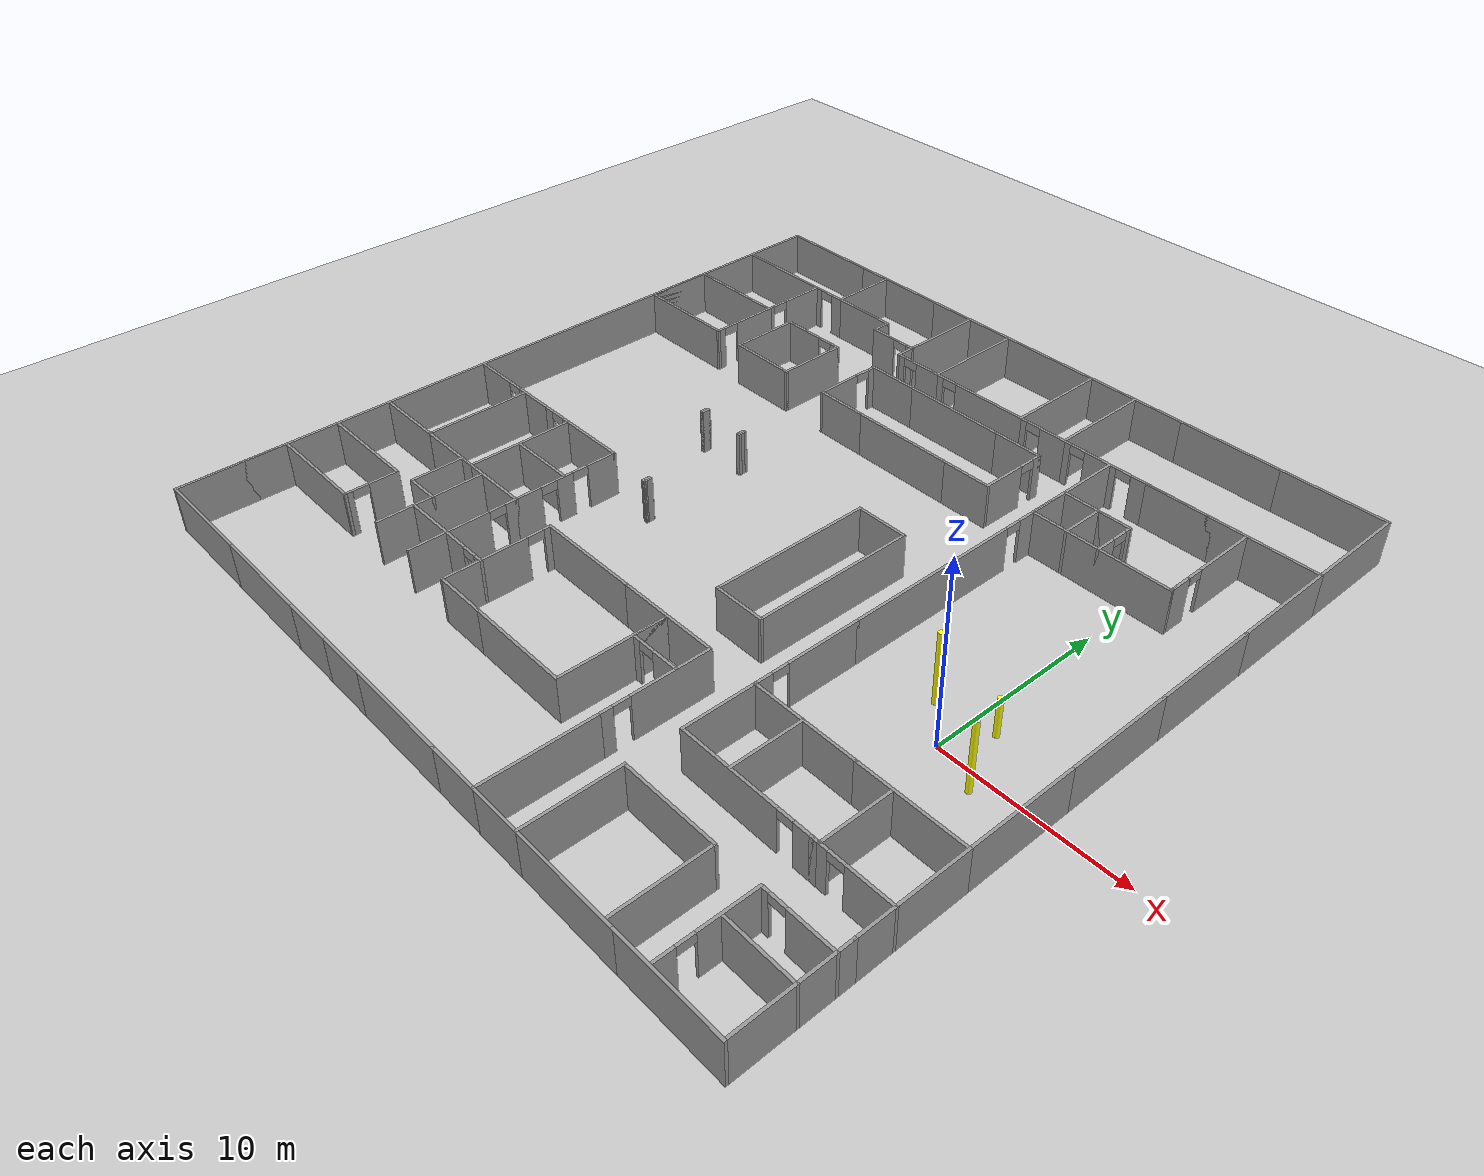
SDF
<sdf version="1.5">
 <world name="default">
  <include><uri>model://sun</uri></include>
  <include><uri>model://ground_plane</uri></include>
  <physics name="default_physics" default="0" type="ode">
   <gravity>0 0 -9.8066</gravity>
   <ode>
    <solver>
     <type>quick</type>
     <iters>10</iters>
     <sor>1.3</sor>
     <use_dynamic_moi_rescaling>0</use_dynamic_moi_rescaling>
    </solver>
    <constraints>
     <cfm>0</cfm>
     <erp>0.2</erp>
     <contact_max_correcting_vel>100</contact_max_correcting_vel>
     <contact_surface_layer>0.001</contact_surface_layer>
    </constraints>
   </ode>
   <max_step_size>0.004</max_step_size>
   <real_time_factor>1</real_time_factor>
   <real_time_update_rate>250</real_time_update_rate>
   <magnetic_field>6.0e-6 2.3e-5 -4.2e-5</magnetic_field>
  </physics>
  <include><name>building</name><pose>-14.5 4 0 0 0 -1.57</pose><uri>model://myhal_V3</uri></include>
  <include>
   <name>checkerboard</name>
   <pose>0 -4.6 1.5 1.57 0 0</pose>
   <uri>model://checkerboard_9_7_0_15</uri>
  </include>
  <include><name>obs1</name><pose>-1.83 1.86 0 0 0 0</pose><uri>model://red_obstacle</uri></include>
  <include><name>obs2</name><pose>1.22 2.3 0 0 0 0</pose><uri>model://green_obstacle</uri></include>
  <include><name>obs3</name><pose>2.54 -0.88 0 0 0 0</pose><uri>model://red_obstacle</uri></include>
 </world>
</sdf>

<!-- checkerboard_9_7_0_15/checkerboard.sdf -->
<sdf version="1.5">
  <model name="checkerboard_9_7_0_15">
  <static>true</static>
  <link name="checkerboard_9_7_0_15_body">
      <visual name="checker_0_0">
        <pose>-0.6 -0.45 0 0 0 0</pose>
        <geometry>
          <box>
            <size>0.15 0.15 0.02</size>
          </box>
        </geometry>
        <material>
          <ambient>0 0 0 1</ambient>
          <diffuse>0 0 0 1</diffuse>
          <specular>0 0 0 1</specular>
          <emissive>0 0 0 1</emissive>
        </material>
      </visual>
      <visual name="checker_0_1">
        <pose>-0.6 -0.3 0 0 0 0</pose>
        <geometry>
          <box>
            <size>0.15 0.15 0.02</size>
          </box>
        </geometry>
        <material>
          <ambient>1 1 1 1</ambient>
          <diffuse>1 1 1 1</diffuse>
          <specular>1 1 1 1</specular>
          <emissive>1 1 1 1</emissive>
        </material>
      </visual>
      <visual name="checker_0_2">
        <pose>-0.6 -0.15 0 0 0 0</pose>
        <geometry>
          <box>
            <size>0.15 0.15 0.02</size>
          </box>
        </geometry>
        <material>
          <ambient>0 0 0 1</ambient>
          <diffuse>0 0 0 1</diffuse>
          <specular>0 0 0 1</specular>
          <emissive>0 0 0 1</emissive>
        </material>
      </visual>
      <visual name="checker_0_3">
        <pose>-0.6 -1.11022302463e-16 0 0 0 0</pose>
        <geometry>
          <box>
            <size>0.15 0.15 0.02</size>
          </box>
        </geometry>
        <material>
          <ambient>1 1 1 1</ambient>
          <diffuse>1 1 1 1</diffuse>
          <specular>1 1 1 1</specular>
          <emissive>1 1 1 1</emissive>
        </material>
      </visual>
      <visual name="checker_0_4">
        <pose>-0.6 0.15 0 0 0 0</pose>
        <geometry>
          <box>
            <size>0.15 0.15 0.02</size>
          </box>
        </geometry>
        <material>
          <ambient>0 0 0 1</ambient>
          <diffuse>0 0 0 1</diffuse>
          <specular>0 0 0 1</specular>
          <emissive>0 0 0 1</emissive>
        </material>
      </visual>
      <visual name="checker_0_5">
        <pose>-0.6 0.3 0 0 0 0</pose>
        <geometry>
          <box>
            <size>0.15 0.15 0.02</size>
          </box>
        </geometry>
        <material>
          <ambient>1 1 1 1</ambient>
          <diffuse>1 1 1 1</diffuse>
          <specular>1 1 1 1</specular>
          <emissive>1 1 1 1</emissive>
        </material>
      </visual>
      <visual name="checker_0_6">
        <pose>-0.6 0.45 0 0 0 0</pose>
        <geometry>
          <box>
            <size>0.15 0.15 0.02</size>
          </box>
        </geometry>
        <material>
          <ambient>0 0 0 1</ambient>
          <diffuse>0 0 0 1</diffuse>
          <specular>0 0 0 1</specular>
          <emissive>0 0 0 1</emissive>
        </material>
      </visual>
      <visual name="checker_1_0">
        <pose>-0.45 -0.45 0 0 0 0</pose>
        <geometry>
          <box>
            <size>0.15 0.15 0.02</size>
          </box>
        </geometry>
        <material>
          <ambient>1 1 1 1</ambient>
          <diffuse>1 1 1 1</diffuse>
          <specular>1 1 1 1</specular>
          <emissive>1 1 1 1</emissive>
        </material>
      </visual>
      <visual name="checker_1_1">
        <pose>-0.45 -0.3 0 0 0 0</pose>
        <geometry>
          <box>
            <size>0.15 0.15 0.02</size>
          </box>
        </geometry>
        <material>
          <ambient>0 0 0 1</ambient>
          <diffuse>0 0 0 1</diffuse>
          <specular>0 0 0 1</specular>
          <emissive>0 0 0 1</emissive>
        </material>
      </visual>
      <visual name="checker_1_2">
        <pose>-0.45 -0.15 0 0 0 0</pose>
        <geometry>
          <box>
            <size>0.15 0.15 0.02</size>
          </box>
        </geometry>
        <material>
          <ambient>1 1 1 1</ambient>
          <diffuse>1 1 1 1</diffuse>
          <specular>1 1 1 1</specular>
          <emissive>1 1 1 1</emissive>
        </material>
      </visual>
      <visual name="checker_1_3">
        <pose>-0.45 -1.11022302463e-16 0 0 0 0</pose>
        <geometry>
          <box>
            <size>0.15 0.15 0.02</size>
          </box>
        </geometry>
        <material>
          <ambient>0 0 0 1</ambient>
          <diffuse>0 0 0 1</diffuse>
          <specular>0 0 0 1</specular>
          <emissive>0 0 0 1</emissive>
        </material>
      </visual>
      <visual name="checker_1_4">
        <pose>-0.45 0.15 0 0 0 0</pose>
        <geometry>
          <box>
            <size>0.15 0.15 0.02</size>
          </box>
        </geometry>
        <material>
          <ambient>1 1 1 1</ambient>
          <diffuse>1 1 1 1</diffuse>
          <specular>1 1 1 1</specular>
          <emissive>1 1 1 1</emissive>
        </material>
      </visual>
      <visual name="checker_1_5">
        <pose>-0.45 0.3 0 0 0 0</pose>
        <geometry>
          <box>
            <size>0.15 0.15 0.02</size>
          </box>
        </geometry>
        <material>
          <ambient>0 0 0 1</ambient>
          <diffuse>0 0 0 1</diffuse>
          <specular>0 0 0 1</specular>
          <emissive>0 0 0 1</emissive>
        </material>
      </visual>
      <visual name="checker_1_6">
        <pose>-0.45 0.45 0 0 0 0</pose>
        <geometry>
          <box>
            <size>0.15 0.15 0.02</size>
          </box>
        </geometry>
        <material>
          <ambient>1 1 1 1</ambient>
          <diffuse>1 1 1 1</diffuse>
          <specular>1 1 1 1</specular>
          <emissive>1 1 1 1</emissive>
        </material>
      </visual>
      <visual name="checker_2_0">
        <pose>-0.3 -0.45 0 0 0 0</pose>
        <geometry>
          <box>
            <size>0.15 0.15 0.02</size>
          </box>
        </geometry>
        <material>
          <ambient>0 0 0 1</ambient>
          <diffuse>0 0 0 1</diffuse>
          <specular>0 0 0 1</specular>
          <emissive>0 0 0 1</emissive>
        </material>
      </visual>
      <visual name="checker_2_1">
        <pose>-0.3 -0.3 0 0 0 0</pose>
        <geometry>
          <box>
            <size>0.15 0.15 0.02</size>
          </box>
        </geometry>
        <material>
          <ambient>1 1 1 1</ambient>
          <diffuse>1 1 1 1</diffuse>
          <specular>1 1 1 1</specular>
          <emissive>1 1 1 1</emissive>
        </material>
      </visual>
      <visual name="checker_2_2">
        <pose>-0.3 -0.15 0 0 0 0</pose>
        <geometry>
          <box>
            <size>0.15 0.15 0.02</size>
          </box>
        </geometry>
        <material>
          <ambient>0 0 0 1</ambient>
          <diffuse>0 0 0 1</diffuse>
          <specular>0 0 0 1</specular>
          <emissive>0 0 0 1</emissive>
        </material>
      </visual>
      <visual name="checker_2_3">
        <pose>-0.3 -1.11022302463e-16 0 0 0 0</pose>
        <geometry>
          <box>
            <size>0.15 0.15 0.02</size>
          </box>
        </geometry>
        <material>
          <ambient>1 1 1 1</ambient>
          <diffuse>1 1 1 1</diffuse>
          <specular>1 1 1 1</specular>
          <emissive>1 1 1 1</emissive>
        </material>
      </visual>
      <visual name="checker_2_4">
        <pose>-0.3 0.15 0 0 0 0</pose>
        <geometry>
          <box>
            <size>0.15 0.15 0.02</size>
          </box>
        </geometry>
        <material>
          <ambient>0 0 0 1</ambient>
          <diffuse>0 0 0 1</diffuse>
          <specular>0 0 0 1</specular>
          <emissive>0 0 0 1</emissive>
        </material>
      </visual>
      <visual name="checker_2_5">
        <pose>-0.3 0.3 0 0 0 0</pose>
        <geometry>
          <box>
            <size>0.15 0.15 0.02</size>
          </box>
        </geometry>
        <material>
          <ambient>1 1 1 1</ambient>
          <diffuse>1 1 1 1</diffuse>
          <specular>1 1 1 1</specular>
          <emissive>1 1 1 1</emissive>
        </material>
      </visual>
      <visual name="checker_2_6">
        <pose>-0.3 0.45 0 0 0 0</pose>
        <geometry>
          <box>
            <size>0.15 0.15 0.02</size>
          </box>
        </geometry>
        <material>
          <ambient>0 0 0 1</ambient>
          <diffuse>0 0 0 1</diffuse>
          <specular>0 0 0 1</specular>
          <emissive>0 0 0 1</emissive>
        </material>
      </visual>
      <visual name="checker_3_0">
        <pose>-0.15 -0.45 0 0 0 0</pose>
        <geometry>
          <box>
            <size>0.15 0.15 0.02</size>
          </box>
        </geometry>
        <material>
          <ambient>1 1 1 1</ambient>
          <diffuse>1 1 1 1</diffuse>
          <specular>1 1 1 1</specular>
          <emissive>1 1 1 1</emissive>
        </material>
      </visual>
      <visual name="checker_3_1">
        <pose>-0.15 -0.3 0 0 0 0</pose>
        <geometry>
          <box>
            <size>0.15 0.15 0.02</size>
          </box>
        </geometry>
        <material>
          <ambient>0 0 0 1</ambient>
          <diffuse>0 0 0 1</diffuse>
          <specular>0 0 0 1</specular>
          <emissive>0 0 0 1</emissive>
        </material>
      </visual>
      <visual name="checker_3_2">
        <pose>-0.15 -0.15 0 0 0 0</pose>
        <geometry>
          <box>
            <size>0.15 0.15 0.02</size>
          </box>
        </geometry>
        <material>
          <ambient>1 1 1 1</ambient>
          <diffuse>1 1 1 1</diffuse>
          <specular>1 1 1 1</specular>
          <emissive>1 1 1 1</emissive>
        </material>
      </visual>
      <visual name="checker_3_3">
        <pose>-0.15 -1.11022302463e-16 0 0 0 0</pose>
        <geometry>
          <box>
            <size>0.15 0.15 0.02</size>
          </box>
        </geometry>
        <material>
          <ambient>0 0 0 1</ambient>
          <diffuse>0 0 0 1</diffuse>
          <specular>0 0 0 1</specular>
          <emissive>0 0 0 1</emissive>
        </material>
      </visual>
      <visual name="checker_3_4">
        <pose>-0.15 0.15 0 0 0 0</pose>
        <geometry>
          <box>
            <size>0.15 0.15 0.02</size>
          </box>
        </geometry>
        <material>
          <ambient>1 1 1 1</ambient>
          <diffuse>1 1 1 1</diffuse>
          <specular>1 1 1 1</specular>
          <emissive>1 1 1 1</emissive>
        </material>
      </visual>
      <visual name="checker_3_5">
        <pose>-0.15 0.3 0 0 0 0</pose>
        <geometry>
          <box>
            <size>0.15 0.15 0.02</size>
          </box>
        </geometry>
        <material>
          <ambient>0 0 0 1</ambient>
          <diffuse>0 0 0 1</diffuse>
          <specular>0 0 0 1</specular>
          <emissive>0 0 0 1</emissive>
        </material>
      </visual>
      <visual name="checker_3_6">
        <pose>-0.15 0.45 0 0 0 0</pose>
        <geometry>
          <box>
            <size>0.15 0.15 0.02</size>
          </box>
        </geometry>
        <material>
          <ambient>1 1 1 1</ambient>
          <diffuse>1 1 1 1</diffuse>
          <specular>1 1 1 1</specular>
          <emissive>1 1 1 1</emissive>
        </material>
      </visual>
      <visual name="checker_4_0">
        <pose>0.0 -0.45 0 0 0 0</pose>
        <geometry>
          <box>
            <size>0.15 0.15 0.02</size>
          </box>
        </geometry>
        <material>
          <ambient>0 0 0 1</ambient>
          <diffuse>0 0 0 1</diffuse>
          <specular>0 0 0 1</specular>
          <emissive>0 0 0 1</emissive>
        </material>
      </visual>
      <visual name="checker_4_1">
        <pose>0.0 -0.3 0 0 0 0</pose>
        <geometry>
          <box>
            <size>0.15 0.15 0.02</size>
          </box>
        </geometry>
        <material>
          <ambient>1 1 1 1</ambient>
          <diffuse>1 1 1 1</diffuse>
          <specular>1 1 1 1</specular>
          <emissive>1 1 1 1</emissive>
        </material>
      </visual>
      <visual name="checker_4_2">
        <pose>0.0 -0.15 0 0 0 0</pose>
        <geometry>
          <box>
            <size>0.15 0.15 0.02</size>
          </box>
        </geometry>
        <material>
          <ambient>0 0 0 1</ambient>
          <diffuse>0 0 0 1</diffuse>
          <specular>0 0 0 1</specular>
          <emissive>0 0 0 1</emissive>
        </material>
      </visual>
      <visual name="checker_4_3">
        <pose>0.0 -1.11022302463e-16 0 0 0 0</pose>
        <geometry>
          <box>
            <size>0.15 0.15 0.02</size>
          </box>
        </geometry>
        <material>
          <ambient>1 1 1 1</ambient>
          <diffuse>1 1 1 1</diffuse>
          <specular>1 1 1 1</specular>
          <emissive>1 1 1 1</emissive>
        </material>
      </visual>
      <visual name="checker_4_4">
        <pose>0.0 0.15 0 0 0 0</pose>
        <geometry>
          <box>
            <size>0.15 0.15 0.02</size>
          </box>
        </geometry>
        <material>
          <ambient>0 0 0 1</ambient>
          <diffuse>0 0 0 1</diffuse>
          <specular>0 0 0 1</specular>
          <emissive>0 0 0 1</emissive>
        </material>
      </visual>
      <visual name="checker_4_5">
        <pose>0.0 0.3 0 0 0 0</pose>
        <geometry>
          <box>
            <size>0.15 0.15 0.02</size>
          </box>
        </geometry>
        <material>
          <ambient>1 1 1 1</ambient>
          <diffuse>1 1 1 1</diffuse>
          <specular>1 1 1 1</specular>
          <emissive>1 1 1 1</emissive>
        </material>
      </visual>
      <visual name="checker_4_6">
        <pose>0.0 0.45 0 0 0 0</pose>
        <geometry>
          <box>
            <size>0.15 0.15 0.02</size>
          </box>
        </geometry>
        <material>
          <ambient>0 0 0 1</ambient>
          <diffuse>0 0 0 1</diffuse>
          <specular>0 0 0 1</specular>
          <emissive>0 0 0 1</emissive>
        </material>
      </visual>
      <visual name="checker_5_0">
        <pose>0.15 -0.45 0 0 0 0</pose>
        <geometry>
          <box>
            <size>0.15 0.15 0.02</size>
          </box>
        </geometry>
        <material>
          <ambient>1 1 1 1</ambient>
          <diffuse>1 1 1 1</diffuse>
          <specular>1 1 1 1</specular>
          <emissive>1 1 1 1</emissive>
        </material>
      </visual>
      <visual name="checker_5_1">
        <pose>0.15 -0.3 0 0 0 0</pose>
        <geometry>
          <box>
            <size>0.15 0.15 0.02</size>
          </box>
        </geometry>
        <material>
          <ambient>0 0 0 1</ambient>
          <diffuse>0 0 0 1</diffuse>
          <specular>0 0 0 1</specular>
          <emissive>0 0 0 1</emissive>
        </material>
      </visual>
      <visual name="checker_5_2">
        <pose>0.15 -0.15 0 0 0 0</pose>
        <geometry>
          <box>
            <size>0.15 0.15 0.02</size>
          </box>
        </geometry>
        <material>
          <ambient>1 1 1 1</ambient>
          <diffuse>1 1 1 1</diffuse>
          <specular>1 1 1 1</specular>
          <emissive>1 1 1 1</emissive>
        </material>
      </visual>
      <visual name="checker_5_3">
        <pose>0.15 -1.11022302463e-16 0 0 0 0</pose>
        <geometry>
          <box>
            <size>0.15 0.15 0.02</size>
          </box>
        </geometry>
        <material>
          <ambient>0 0 0 1</ambient>
          <diffuse>0 0 0 1</diffuse>
          <specular>0 0 0 1</specular>
          <emissive>0 0 0 1</emissive>
        </material>
      </visual>
      <visual name="checker_5_4">
        <pose>0.15 0.15 0 0 0 0</pose>
        <geometry>
          <box>
            <size>0.15 0.15 0.02</size>
          </box>
        </geometry>
        <material>
          <ambient>1 1 1 1</ambient>
          <diffuse>1 1 1 1</diffuse>
          <specular>1 1 1 1</specular>
          <emissive>1 1 1 1</emissive>
        </material>
      </visual>
      <visual name="checker_5_5">
        <pose>0.15 0.3 0 0 0 0</pose>
        <geometry>
          <box>
            <size>0.15 0.15 0.02</size>
          </box>
        </geometry>
        <material>
          <ambient>0 0 0 1</ambient>
          <diffuse>0 0 0 1</diffuse>
          <specular>0 0 0 1</specular>
          <emissive>0 0 0 1</emissive>
        </material>
      </visual>
      <visual name="checker_5_6">
        <pose>0.15 0.45 0 0 0 0</pose>
        <geometry>
          <box>
            <size>0.15 0.15 0.02</size>
          </box>
        </geometry>
        <material>
          <ambient>1 1 1 1</ambient>
          <diffuse>1 1 1 1</diffuse>
          <specular>1 1 1 1</specular>
          <emissive>1 1 1 1</emissive>
        </material>
      </visual>
      <visual name="checker_6_0">
        <pose>0.3 -0.45 0 0 0 0</pose>
        <geometry>
          <box>
            <size>0.15 0.15 0.02</size>
          </box>
        </geometry>
        <material>
          <ambient>0 0 0 1</ambient>
          <diffuse>0 0 0 1</diffuse>
          <specular>0 0 0 1</specular>
          <emissive>0 0 0 1</emissive>
        </material>
      </visual>
      <visual name="checker_6_1">
        <pose>0.3 -0.3 0 0 0 0</pose>
        <geometry>
          <box>
            <size>0.15 0.15 0.02</size>
          </box>
        </geometry>
        <material>
          <ambient>1 1 1 1</ambient>
          <diffuse>1 1 1 1</diffuse>
          <specular>1 1 1 1</specular>
          <emissive>1 1 1 1</emissive>
        </material>
      </visual>
      <visual name="checker_6_2">
        <pose>0.3 -0.15 0 0 0 0</pose>
        <geometry>
          <box>
            <size>0.15 0.15 0.02</size>
          </box>
        </geometry>
        <material>
          <ambient>0 0 0 1</ambient>
          <diffuse>0 0 0 1</diffuse>
          <specular>0 0 0 1</specular>
          <emissive>0 0 0 1</emissive>
        </material>
      </visual>
      <visual name="checker_6_3">
        <pose>0.3 -1.11022302463e-16 0 0 0 0</pose>
        <geometry>
          <box>
            <size>0.15 0.15 0.02</size>
          </box>
        </geometry>
        <material>
          <ambient>1 1 1 1</ambient>
          <diffuse>1 1 1 1</diffuse>
          <specular>1 1 1 1</specular>
          <emissive>1 1 1 1</emissive>
        </material>
      </visual>
      <visual name="checker_6_4">
        <pose>0.3 0.15 0 0 0 0</pose>
        <geometry>
          <box>
            <size>0.15 0.15 0.02</size>
          </box>
        </geometry>
        <material>
          <ambient>0 0 0 1</ambient>
          <diffuse>0 0 0 1</diffuse>
          <specular>0 0 0 1</specular>
          <emissive>0 0 0 1</emissive>
        </material>
      </visual>
      <visual name="checker_6_5">
        <pose>0.3 0.3 0 0 0 0</pose>
        <geometry>
          <box>
            <size>0.15 0.15 0.02</size>
          </box>
        </geometry>
        <material>
          <ambient>1 1 1 1</ambient>
          <diffuse>1 1 1 1</diffuse>
          <specular>1 1 1 1</specular>
          <emissive>1 1 1 1</emissive>
        </material>
      </visual>
      <visual name="checker_6_6">
        <pose>0.3 0.45 0 0 0 0</pose>
        <geometry>
          <box>
            <size>0.15 0.15 0.02</size>
          </box>
        </geometry>
        <material>
          <ambient>0 0 0 1</ambient>
          <diffuse>0 0 0 1</diffuse>
          <specular>0 0 0 1</specular>
          <emissive>0 0 0 1</emissive>
        </material>
      </visual>
      <visual name="checker_7_0">
        <pose>0.45 -0.45 0 0 0 0</pose>
        <geometry>
          <box>
            <size>0.15 0.15 0.02</size>
          </box>
        </geometry>
        <material>
          <ambient>1 1 1 1</ambient>
          <diffuse>1 1 1 1</diffuse>
          <specular>1 1 1 1</specular>
          <emissive>1 1 1 1</emissive>
        </material>
      </visual>
      <visual name="checker_7_1">
        <pose>0.45 -0.3 0 0 0 0</pose>
        <geometry>
          <box>
            <size>0.15 0.15 0.02</size>
          </box>
        </geometry>
        <material>
          <ambient>0 0 0 1</ambient>
          <diffuse>0 0 0 1</diffuse>
          <specular>0 0 0 1</specular>
          <emissive>0 0 0 1</emissive>
        </material>
      </visual>
      <visual name="checker_7_2">
        <pose>0.45 -0.15 0 0 0 0</pose>
        <geometry>
          <box>
            <size>0.15 0.15 0.02</size>
          </box>
        </geometry>
        <material>
          <ambient>1 1 1 1</ambient>
          <diffuse>1 1 1 1</diffuse>
          <specular>1 1 1 1</specular>
          <emissive>1 1 1 1</emissive>
        </material>
      </visual>
      <visual name="checker_7_3">
        <pose>0.45 -1.11022302463e-16 0 0 0 0</pose>
        <geometry>
          <box>
            <size>0.15 0.15 0.02</size>
          </box>
        </geometry>
        <material>
          <ambient>0 0 0 1</ambient>
          <diffuse>0 0 0 1</diffuse>
          <specular>0 0 0 1</specular>
          <emissive>0 0 0 1</emissive>
        </material>
      </visual>
      <visual name="checker_7_4">
        <pose>0.45 0.15 0 0 0 0</pose>
        <geometry>
          <box>
            <size>0.15 0.15 0.02</size>
          </box>
        </geometry>
        <material>
          <ambient>1 1 1 1</ambient>
          <diffuse>1 1 1 1</diffuse>
          <specular>1 1 1 1</specular>
          <emissive>1 1 1 1</emissive>
        </material>
      </visual>
      <visual name="checker_7_5">
        <pose>0.45 0.3 0 0 0 0</pose>
        <geometry>
          <box>
            <size>0.15 0.15 0.02</size>
          </box>
        </geometry>
        <material>
          <ambient>0 0 0 1</ambient>
          <diffuse>0 0 0 1</diffuse>
          <specular>0 0 0 1</specular>
          <emissive>0 0 0 1</emissive>
        </material>
      </visual>
      <visual name="checker_7_6">
        <pose>0.45 0.45 0 0 0 0</pose>
        <geometry>
          <box>
            <size>0.15 0.15 0.02</size>
          </box>
        </geometry>
        <material>
          <ambient>1 1 1 1</ambient>
          <diffuse>1 1 1 1</diffuse>
          <specular>1 1 1 1</specular>
          <emissive>1 1 1 1</emissive>
        </material>
      </visual>
      <visual name="checker_8_0">
        <pose>0.6 -0.45 0 0 0 0</pose>
        <geometry>
          <box>
            <size>0.15 0.15 0.02</size>
          </box>
        </geometry>
        <material>
          <ambient>0 0 0 1</ambient>
          <diffuse>0 0 0 1</diffuse>
          <specular>0 0 0 1</specular>
          <emissive>0 0 0 1</emissive>
        </material>
      </visual>
      <visual name="checker_8_1">
        <pose>0.6 -0.3 0 0 0 0</pose>
        <geometry>
          <box>
            <size>0.15 0.15 0.02</size>
          </box>
        </geometry>
        <material>
          <ambient>1 1 1 1</ambient>
          <diffuse>1 1 1 1</diffuse>
          <specular>1 1 1 1</specular>
          <emissive>1 1 1 1</emissive>
        </material>
      </visual>
      <visual name="checker_8_2">
        <pose>0.6 -0.15 0 0 0 0</pose>
        <geometry>
          <box>
            <size>0.15 0.15 0.02</size>
          </box>
        </geometry>
        <material>
          <ambient>0 0 0 1</ambient>
          <diffuse>0 0 0 1</diffuse>
          <specular>0 0 0 1</specular>
          <emissive>0 0 0 1</emissive>
        </material>
      </visual>
      <visual name="checker_8_3">
        <pose>0.6 -1.11022302463e-16 0 0 0 0</pose>
        <geometry>
          <box>
            <size>0.15 0.15 0.02</size>
          </box>
        </geometry>
        <material>
          <ambient>1 1 1 1</ambient>
          <diffuse>1 1 1 1</diffuse>
          <specular>1 1 1 1</specular>
          <emissive>1 1 1 1</emissive>
        </material>
      </visual>
      <visual name="checker_8_4">
        <pose>0.6 0.15 0 0 0 0</pose>
        <geometry>
          <box>
            <size>0.15 0.15 0.02</size>
          </box>
        </geometry>
        <material>
          <ambient>0 0 0 1</ambient>
          <diffuse>0 0 0 1</diffuse>
          <specular>0 0 0 1</specular>
          <emissive>0 0 0 1</emissive>
        </material>
      </visual>
      <visual name="checker_8_5">
        <pose>0.6 0.3 0 0 0 0</pose>
        <geometry>
          <box>
            <size>0.15 0.15 0.02</size>
          </box>
        </geometry>
        <material>
          <ambient>1 1 1 1</ambient>
          <diffuse>1 1 1 1</diffuse>
          <specular>1 1 1 1</specular>
          <emissive>1 1 1 1</emissive>
        </material>
      </visual>
      <visual name="checker_8_6">
        <pose>0.6 0.45 0 0 0 0</pose>
        <geometry>
          <box>
            <size>0.15 0.15 0.02</size>
          </box>
        </geometry>
        <material>
          <ambient>0 0 0 1</ambient>
          <diffuse>0 0 0 1</diffuse>
          <specular>0 0 0 1</specular>
          <emissive>0 0 0 1</emissive>
        </material>
      </visual>
      <visual name="checker_backdrop">
        <pose>0 0 0 0 0 0</pose>
        <geometry>
          <box>
            <size>1.65 1.35 0.0001</size>
          </box>
        </geometry>
        <material>
          <ambient>1 1 1 1</ambient>
          <diffuse>1 1 1 1</diffuse>
          <specular>1 1 1 1</specular>
          <emissive>1 1 1 1</emissive>
        </material>
      </visual>
    </link>
  </model>
</sdf>

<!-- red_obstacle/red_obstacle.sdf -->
<sdf version="1.6">
  <model name="green_obstacle">
    <link name="base_link">
      <!-- Visual properties of the cylinder -->
      <visual name="cylinder_visual">
        <pose>0 0 2 0 0 0</pose>
        <geometry>
          <cylinder>
            <radius>0.15</radius>
            <length>4</length>
          </cylinder>
        </geometry>
        <material>
          <ambient>1 1 0 1</ambient>
          <diffuse>1 1 0 1</diffuse>
          <specular>0.5 0.5 0.5 1</specular>
          <emissive>0 0 0 0</emissive>
        </material>
      </visual>

      <!-- Physical properties of the cylinder -->
      <collision name="cylinder_collision">
        <pose>0 0 2 0 0 0</pose>
        <geometry>
          <cylinder>
            <radius>0.15</radius>
            <length>4</length>
          </cylinder>
        </geometry>
      </collision>

      <!-- Inertial properties of the cylinder -->
      <inertial>
        <pose>0 0 2 0 0 0</pose>
        <mass>10</mass>
        <inertia>
          <ixx>0.1541</ixx>
          <ixy>0</ixy>
          <ixz>0</ixz>
          <iyy>0.1541</iyy>
          <iyz>0</iyz>
          <izz>0.0169</izz>
        </inertia>
      </inertial>
    </link>
  </model>
</sdf>

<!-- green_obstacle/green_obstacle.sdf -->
<sdf version="1.6">
  <model name="green_obstacle">
    <link name="base_link">
      <!-- Visual properties of the cylinder -->
      <visual name="cylinder_visual">
        <pose>0 0 1.1 0 0 0</pose>
        <geometry>
          <cylinder>
            <radius>0.15</radius>
            <length>2.2</length>
          </cylinder>
        </geometry>
        <material>
          <ambient>1 1 0 1</ambient>
          <diffuse>1 1 0 1</diffuse>
          <specular>0.5 0.5 0.5 1</specular>
          <emissive>0 0 0 0</emissive>
        </material>
      </visual>

      <!-- Physical properties of the cylinder -->
      <collision name="cylinder_collision">
        <pose>0 0 1.1 0 0 0</pose>
        <geometry>
          <cylinder>
            <radius>0.15</radius>
            <length>2.2</length>
          </cylinder>
        </geometry>
      </collision>

      <!-- Inertial properties of the cylinder -->
      <inertial>
        <pose>0 0 1.1 0 0 0</pose>
        <mass>10</mass>
        <inertia>
          <ixx>0.1541</ixx>
          <ixy>0</ixy>
          <ixz>0</ixz>
          <iyy>0.1541</iyy>
          <iyz>0</iyz>
          <izz>0.0169</izz>
        </inertia>
      </inertial>
    </link>
  </model>
</sdf>
